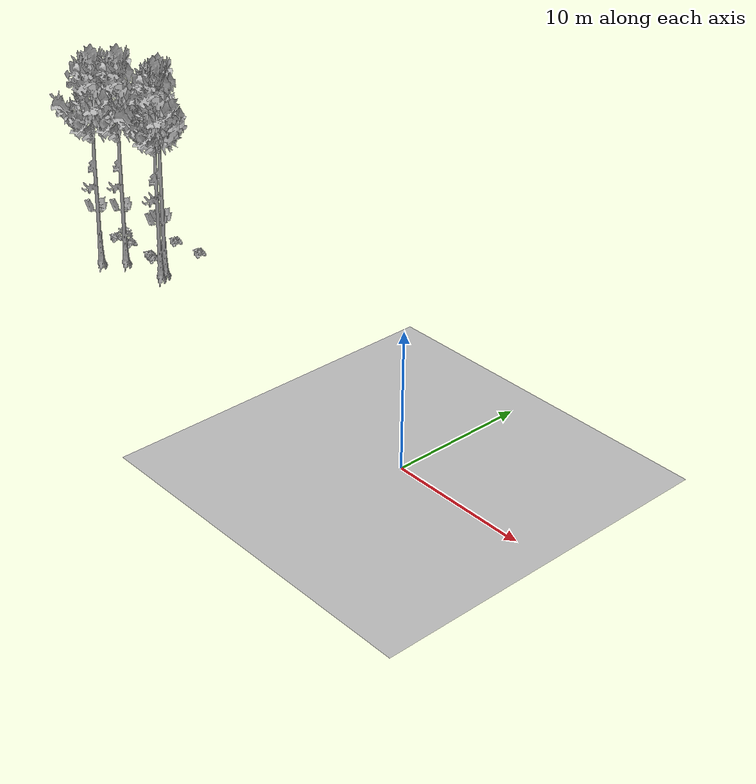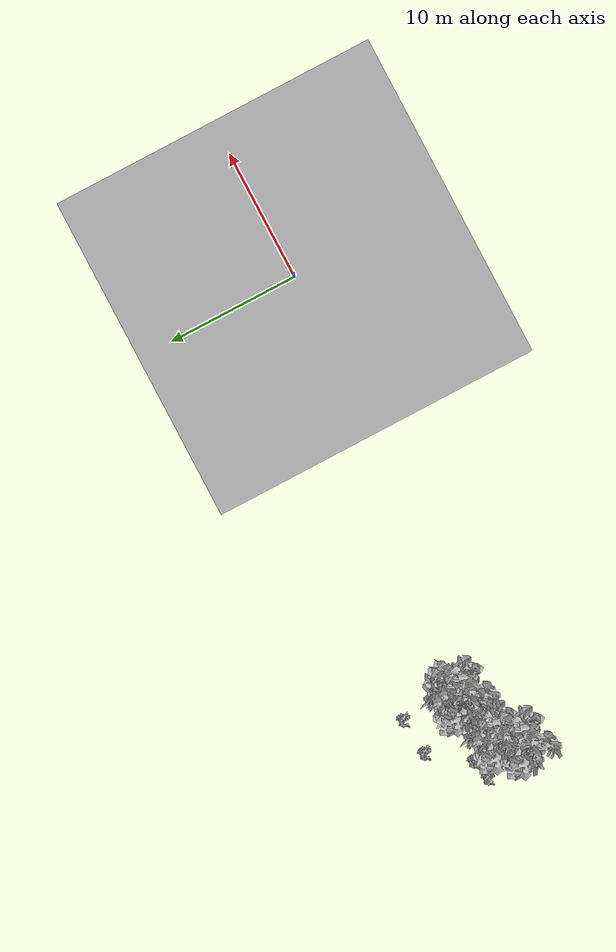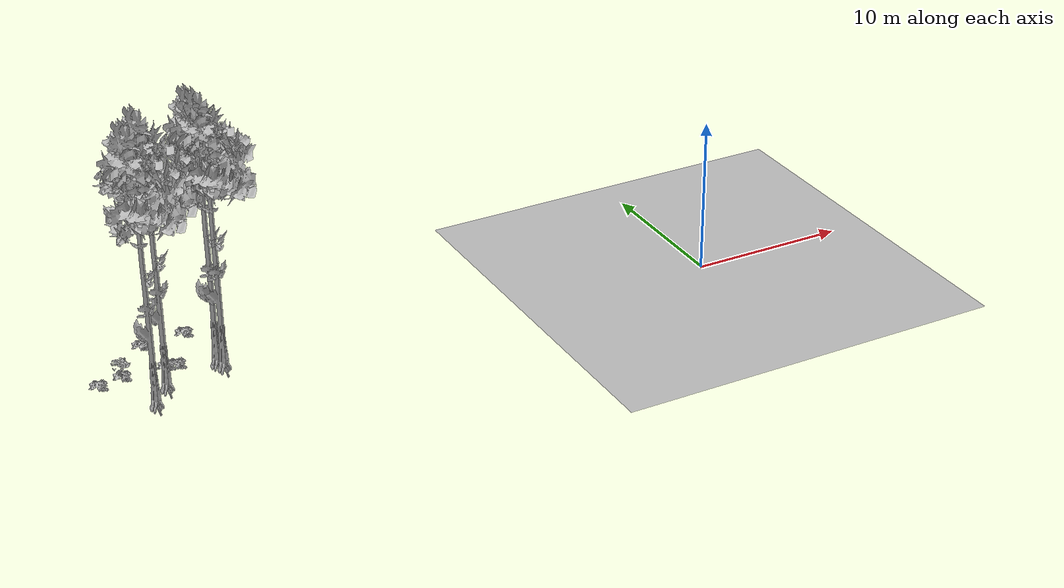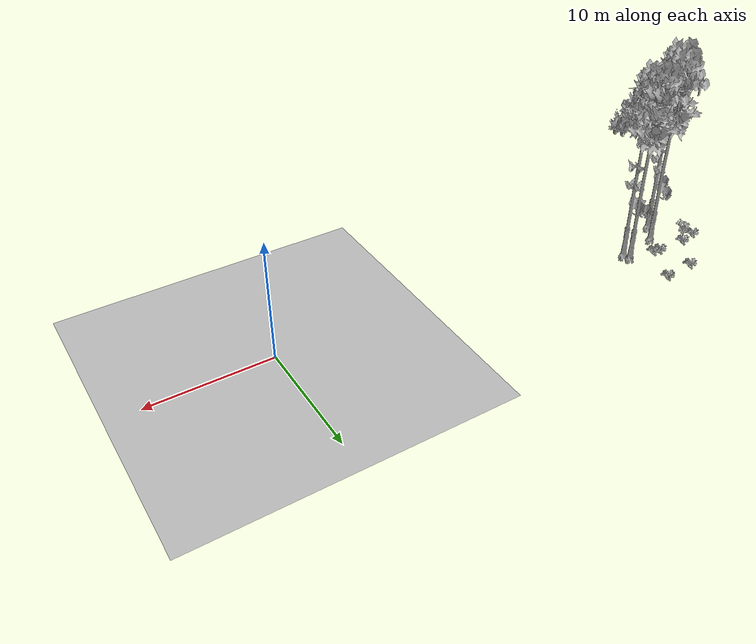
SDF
<sdf version="1.7">
 <world name="default">
  <model name="ground_plane">
   <static>1</static>
   <link name="link">
    <collision name="collision">
     <pose>-50 0 0 0 -0 0</pose>
     <geometry><plane><normal>0 0 1</normal><size>80 80</size></plane></geometry>
     <surface><contact><ode><min_depth>0.01</min_depth><max_vel>0</max_vel></ode></contact></surface>
    </collision>
    <visual name="grass">
     <cast_shadows>0</cast_shadows>
     <geometry>
      <mesh>
       <scale>0.46714285714285714 0.46714285714285714 0.1</scale>
       <uri>file://grass_plane/meshes/grass_plane.dae</uri>
      </mesh>
     </geometry>
    </visual>
   </link>
  </model>
  <model name="Tree 32">
   <static>1</static>
   <pose>-31.09887542613032 4.177149169723151 0 1.57079 -0 0</pose>
   <link name="link">
    <collision name="collision">
     <geometry><mesh><scale>3.5 5 3.5</scale><uri>model://tree_9/meshes/tree_9.obj</uri></mesh></geometry>
    </collision>
    <visual name="visual">
     <geometry><mesh><scale>3.5 5 3.5</scale><uri>model://tree_9/meshes/tree_9.obj</uri></mesh></geometry>
    </visual>
   </link>
  </model>
  <model name="Tree 195">
   <static>1</static>
   <pose>-35.84402488625756 1.5038383464271874 0 1.57079 -0 0</pose>
   <link name="link">
    <collision name="collision">
     <geometry><mesh><scale>3.5 5 3.5</scale><uri>model://tree_9/meshes/tree_9.obj</uri></mesh></geometry>
    </collision>
    <visual name="visual">
     <geometry><mesh><scale>3.5 5 3.5</scale><uri>model://tree_9/meshes/tree_9.obj</uri></mesh></geometry>
    </visual>
   </link>
  </model>
  <model name="Tree 285">
   <static>1</static>
   <pose>-30.879648464886237 3.6012382466154946 0 1.57079 -0 0</pose>
   <link name="link">
    <collision name="collision">
     <geometry><mesh><scale>3.5 5 3.5</scale><uri>model://tree_9/meshes/tree_9.obj</uri></mesh></geometry>
    </collision>
    <visual name="visual">
     <geometry><mesh><scale>3.5 5 3.5</scale><uri>model://tree_9/meshes/tree_9.obj</uri></mesh></geometry>
    </visual>
   </link>
  </model>
  <model name="Tree 452">
   <static>1</static>
   <pose>-34.6537244333833 2.992960616894429 0 1.57079 -0 0</pose>
   <link name="link">
    <collision name="collision">
     <geometry><mesh><scale>3.5 5 3.5</scale><uri>model://tree_9/meshes/tree_9.obj</uri></mesh></geometry>
    </collision>
    <visual name="visual">
     <geometry><mesh><scale>3.5 5 3.5</scale><uri>model://tree_9/meshes/tree_9.obj</uri></mesh></geometry>
    </visual>
   </link>
  </model>
  <model name="Bush 3">
   <static>1</static>
   <pose>-38.25944152219577 4.457967985574669 0 1.57079 -0 0</pose>
   <link name="link">
    <collision name="collision">
     <geometry><mesh><scale>2 2 2</scale><uri>model://bush_2/meshes/bush_2.obj</uri></mesh></geometry>
     <surface><contact><collide_without_contact>false</collide_without_contact></contact></surface>
    </collision>
    <visual name="visual">
     <geometry><mesh><scale>2 2 2</scale><uri>model://bush_2/meshes/bush_2.obj</uri></mesh></geometry>
    </visual>
   </link>
  </model>
  <model name="Bush 37">
   <static>1</static>
   <pose>-34.00016973243556 4.761500245456162 0 1.57079 -0 0</pose>
   <link name="link">
    <collision name="collision">
     <geometry><mesh><scale>2 2 2</scale><uri>model://bush_2/meshes/bush_2.obj</uri></mesh></geometry>
     <surface><contact><collide_without_contact>false</collide_without_contact></contact></surface>
    </collision>
    <visual name="visual">
     <geometry><mesh><scale>2 2 2</scale><uri>model://bush_2/meshes/bush_2.obj</uri></mesh></geometry>
    </visual>
   </link>
  </model>
  <model name="Bush 176">
   <static>1</static>
   <pose>-33.40666468045485 4.636164466724601 0 1.57079 -0 0</pose>
   <link name="link">
    <collision name="collision">
     <geometry><mesh><scale>2 2 2</scale><uri>model://bush_2/meshes/bush_2.obj</uri></mesh></geometry>
     <surface><contact><collide_without_contact>false</collide_without_contact></contact></surface>
    </collision>
    <visual name="visual">
     <geometry><mesh><scale>2 2 2</scale><uri>model://bush_2/meshes/bush_2.obj</uri></mesh></geometry>
    </visual>
   </link>
  </model>
  <model name="Bush 342">
   <static>1</static>
   <pose>-34.56409704227105 7.651119188972466 0 1.57079 -0 0</pose>
   <link name="link">
    <collision name="collision">
     <geometry><mesh><scale>2 2 2</scale><uri>model://bush_2/meshes/bush_2.obj</uri></mesh></geometry>
     <surface><contact><collide_without_contact>false</collide_without_contact></contact></surface>
    </collision>
    <visual name="visual">
     <geometry><mesh><scale>2 2 2</scale><uri>model://bush_2/meshes/bush_2.obj</uri></mesh></geometry>
    </visual>
   </link>
  </model>
  <model name="Bush 382">
   <static>1</static>
   <pose>-36.77723184643794 4.6413430845411625 0 1.57079 -0 0</pose>
   <link name="link">
    <collision name="collision">
     <geometry><mesh><scale>2 2 2</scale><uri>model://bush_5/meshes/bush_5.obj</uri></mesh></geometry>
     <surface><contact><collide_without_contact>false</collide_without_contact></contact></surface>
    </collision>
    <visual name="visual">
     <geometry><mesh><scale>2 2 2</scale><uri>model://bush_5/meshes/bush_5.obj</uri></mesh></geometry>
    </visual>
   </link>
  </model>
  <model name="Bush 532">
   <static>1</static>
   <pose>-31.755704732931555 7.885947051361981 0 1.57079 -0 0</pose>
   <link name="link">
    <collision name="collision">
     <geometry><mesh><scale>2 2 2</scale><uri>model://bush_2/meshes/bush_2.obj</uri></mesh></geometry>
     <surface><contact><collide_without_contact>false</collide_without_contact></contact></surface>
    </collision>
    <visual name="visual">
     <geometry><mesh><scale>2 2 2</scale><uri>model://bush_2/meshes/bush_2.obj</uri></mesh></geometry>
    </visual>
   </link>
  </model>
  <model name="Bush 639">
   <static>1</static>
   <pose>-36.71194133653253 4.798528863675074 0 1.57079 -0 0</pose>
   <link name="link">
    <collision name="collision">
     <geometry><mesh><scale>2 2 2</scale><uri>model://bush_2/meshes/bush_2.obj</uri></mesh></geometry>
     <surface><contact><collide_without_contact>false</collide_without_contact></contact></surface>
    </collision>
    <visual name="visual">
     <geometry><mesh><scale>2 2 2</scale><uri>model://bush_2/meshes/bush_2.obj</uri></mesh></geometry>
    </visual>
   </link>
  </model>
 </world>
</sdf>
